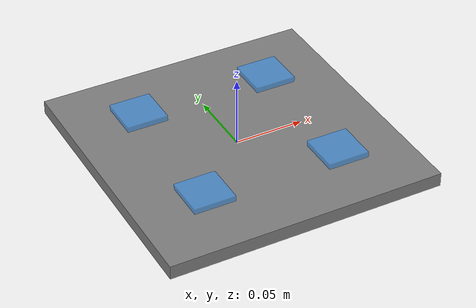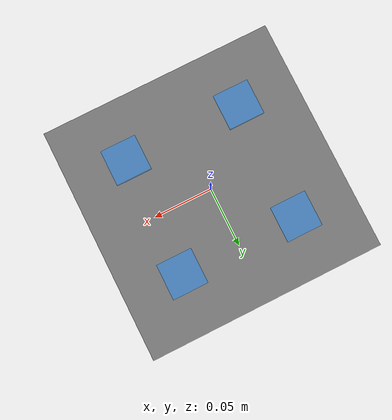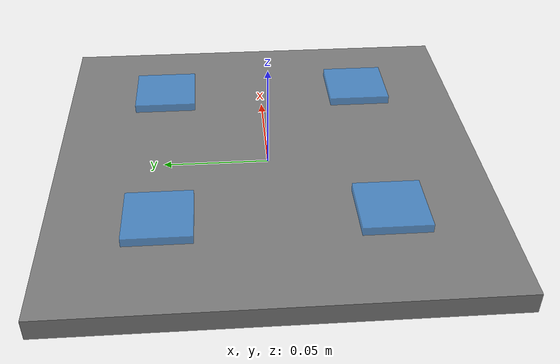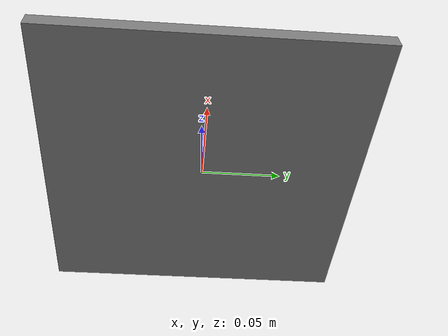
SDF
<?xml version="1.0"?>
<sdf version="1.9">
  <model name="touch_sensor_demo">
    <static>true</static>

    <link name="base">
      <visual name="base_visual">
        <geometry><box><size>0.2 0.2 0.01</size></box></geometry>
        <material>
          <ambient>0.5 0.5 0.5 1</ambient>
          <diffuse>0.5 0.5 0.5 1</diffuse>
        </material>
      </visual>
    </link>

    <!-- Upper-left sensor -->
    <link name="touch_ul">
      <pose>-0.05 0.05 0.01 0 0 0</pose>
      <visual name="touch_ul">
        <geometry><box><size>0.03 0.03 0.004</size></box></geometry>
        <material>
          <ambient>0.2 0.6 1.0 0.6</ambient>
          <diffuse>0.2 0.6 1.0 0.6</diffuse>
          <emissive>0 0.1 0.2 1</emissive>
        </material>
      </visual>
      <collision name="touch_ul_col">
        <geometry><box><size>0.03 0.03 0.004</size></box></geometry>
      </collision>
    </link>
    <joint name="touch_ul_joint" type="fixed">
      <parent>base</parent><child>touch_ul</child>
    </joint>

    <!-- Upper-right sensor -->
    <link name="touch_ur">
      <pose>0.05 0.05 0.01 0 0 0</pose>
      <visual name="touch_ur">
        <geometry><box><size>0.03 0.03 0.004</size></box></geometry>
        <material>
          <ambient>0.2 0.6 1.0 0.6</ambient>
          <diffuse>0.2 0.6 1.0 0.6</diffuse>
          <emissive>0 0.1 0.2 1</emissive>
        </material>
      </visual>
      <collision name="touch_ur_col">
        <geometry><box><size>0.03 0.03 0.004</size></box></geometry>
      </collision>
    </link>
    <joint name="touch_ur_joint" type="fixed">
      <parent>base</parent><child>touch_ur</child>
    </joint>

    <!-- Lower-left sensor -->
    <link name="touch_ll">
      <pose>-0.05 -0.05 0.01 0 0 0</pose>
      <visual name="touch_ll">
        <geometry><box><size>0.03 0.03 0.004</size></box></geometry>
        <material>
          <ambient>0.2 0.6 1.0 0.6</ambient>
          <diffuse>0.2 0.6 1.0 0.6</diffuse>
          <emissive>0 0.1 0.2 1</emissive>
        </material>
      </visual>
      <collision name="touch_ll_col">
        <geometry><box><size>0.03 0.03 0.004</size></box></geometry>
      </collision>
    </link>
    <joint name="touch_ll_joint" type="fixed">
      <parent>base</parent><child>touch_ll</child>
    </joint>

    <!-- Lower-right sensor -->
    <link name="touch_lr">
      <pose>0.05 -0.05 0.01 0 0 0</pose>
      <visual name="touch_lr">
        <geometry><box><size>0.03 0.03 0.004</size></box></geometry>
        <material>
          <ambient>0.2 0.6 1.0 0.6</ambient>
          <diffuse>0.2 0.6 1.0 0.6</diffuse>
          <emissive>0 0.1 0.2 1</emissive>
        </material>
      </visual>
      <collision name="touch_lr_col">
        <geometry><box><size>0.03 0.03 0.004</size></box></geometry>
      </collision>
    </link>
    <joint name="touch_lr_joint" type="fixed">
      <parent>base</parent><child>touch_lr</child>
    </joint>

  </model>
</sdf>
